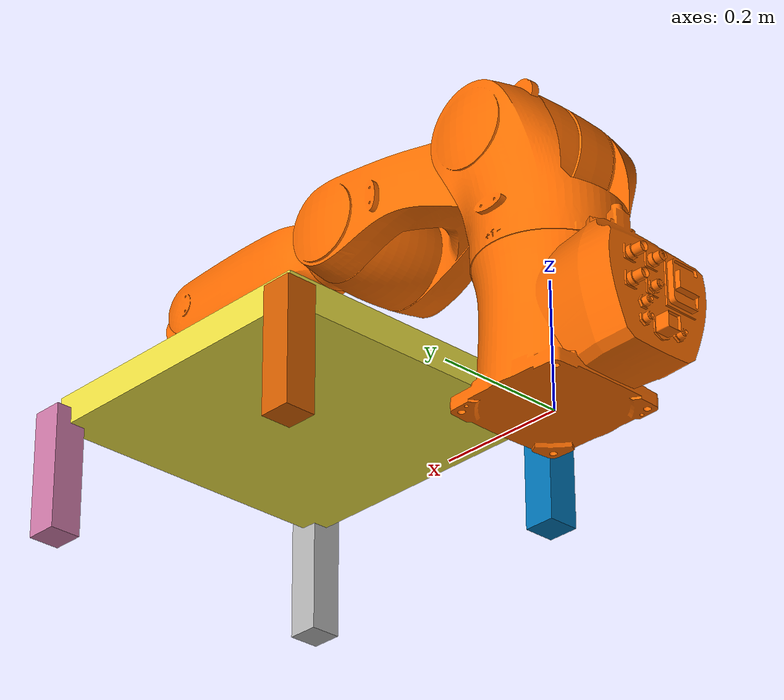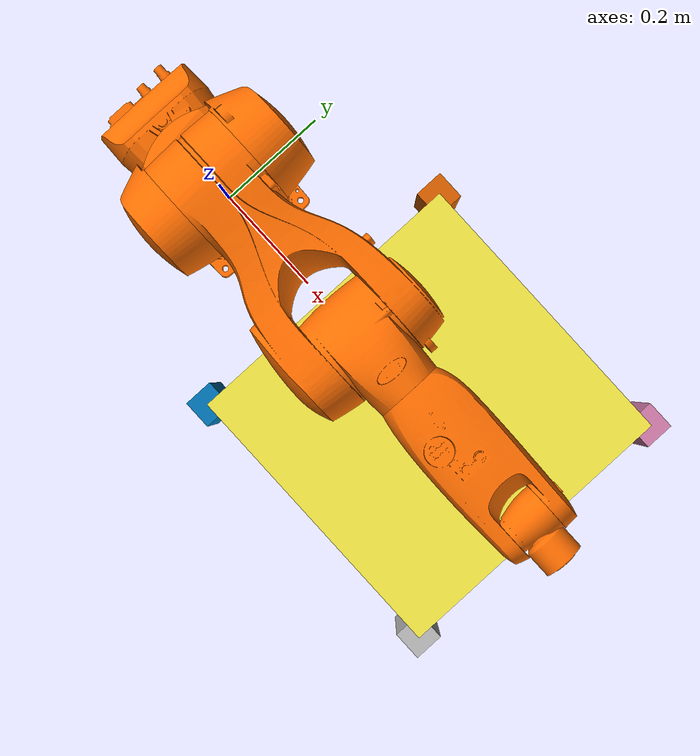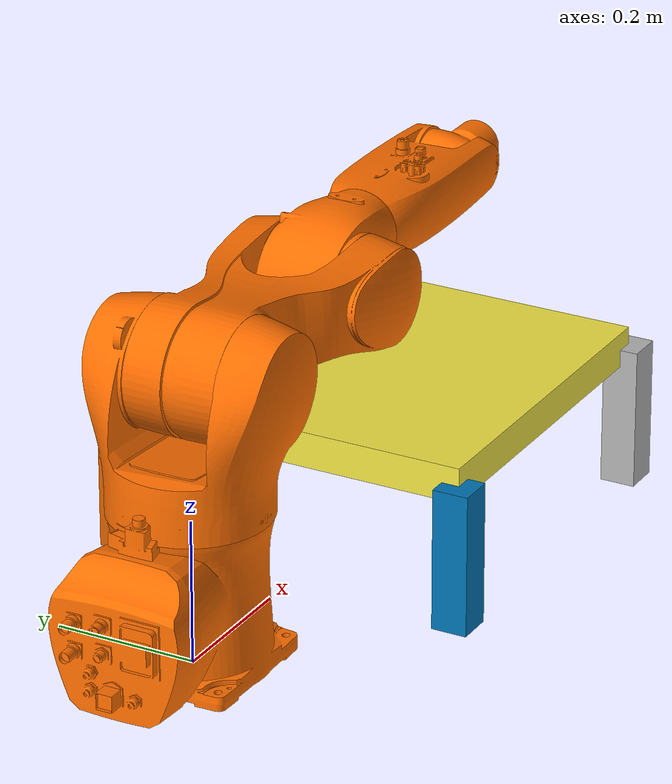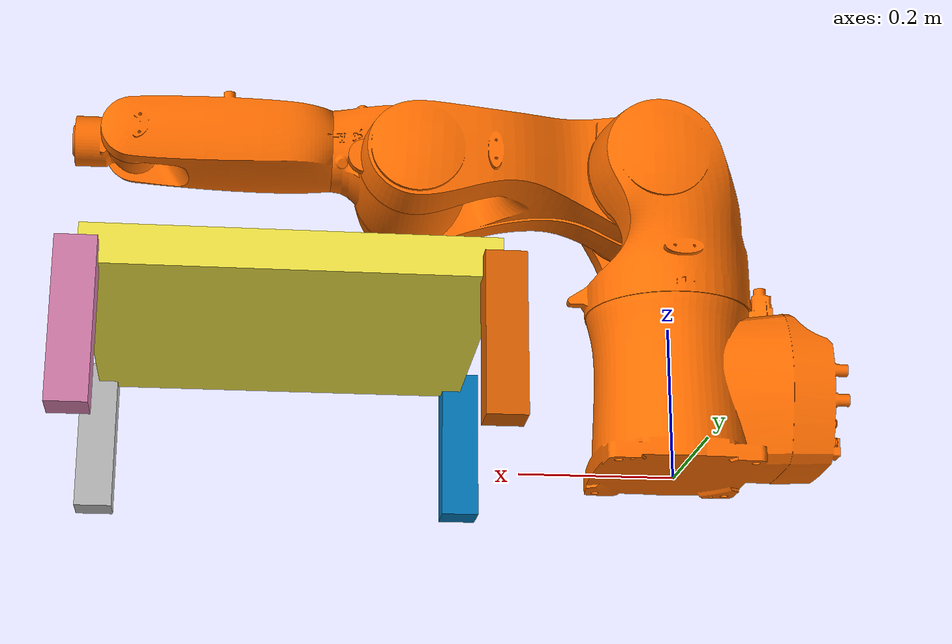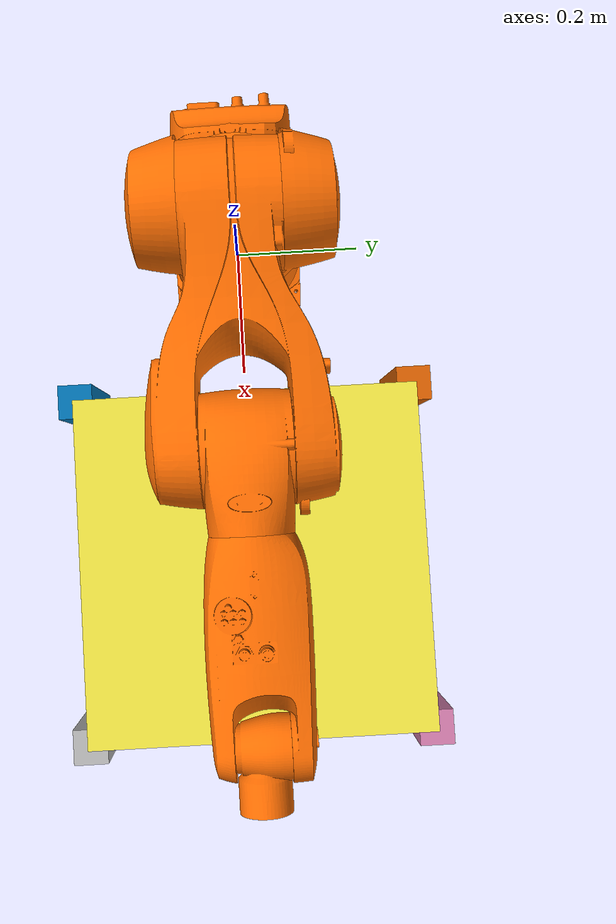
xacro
<?xml version="1.0"?>

<robot name="workcell" xmlns:xacro="http://ros.org/wiki/xacro">

	<xacro:include filename="$(find kuka_kr6)/robots/table.xacro"/>
  <xacro:include filename="$(find kuka_kr6)/robots/kuka_kr6_description_mesh_noword.xacro"/>

  <link name="world_frame"/>

  <xacro:kuka_kr6 prefix=""/>
  <xacro:table length="0.5" width="0.5" height="0.2"/>

	<joint name="world_to_robot" type="fixed">
    <parent link="world_frame"/>
    <child link="base_link"/>
    <origin xyz="0 0 0" rpy="0 0 0"/>
  </joint>

  <joint name="world_to_table" type="fixed">
    <parent link="world_frame"/>
    <child link="table_base"/>
    <origin xyz="0.5 0 0" rpy="0 0 0"/>
  </joint>

</robot>

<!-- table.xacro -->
<robot name="table" xmlns:xacro="http://ros.org/wiki/xacro">

<xacro:macro name="table_leg" params="suffix len x y">
  <link name="table_leg_${suffix}">
    <visual>
      <geometry>
        <box size="0.05 0.05 ${len}"/>
      </geometry>
      <origin xyz="0 0 0" rpy="0 0 0"/>
    </visual>
    <collision>
      <geometry>
        <box size="0.05 0.05 ${len}"/>
      </geometry>
      <origin xyz="0 0 0" rpy="0 0 0"/>
    </collision>
  </link>
  <joint name="table_leg_${suffix}" type="fixed">
    <parent link="table_base"/>
    <child link="table_leg_${suffix}"/>
    <origin xyz="${x} ${y} ${len/2}" rpy="0 0 0"/>
  </joint>
</xacro:macro>

<xacro:macro name="table" params="length width height">
  <link name="table_base"/>
  <link name="table_top">
    <visual>
      <geometry>
        <box size="${length} ${width} 0.05"/>
      </geometry>
      <origin xyz="0 0 0" rpy="0 0 0"/>
    </visual>
    <collision>
      <geometry>
        <box size="${length} ${width} 0.05"/>
      </geometry>
      <origin xyz="0 0 0" rpy="0 0 0"/>
    </collision>
  </link>
  <joint name="table_top" type="fixed">
    <parent link="table_base"/>
    <child link="table_top"/>
    <origin xyz="0 0 ${height}" rpy="0 0 0"/>
  </joint>

  <xacro:table_leg suffix="1" len="${height}" x="${-length/2}" y="${-width/2}"/>
  <xacro:table_leg suffix="2" len="${height}" x="${-length/2}" y="${width/2}"/>
  <xacro:table_leg suffix="3" len="${height}" x="${length/2}" y="${width/2}"/>
  <xacro:table_leg suffix="4" len="${height}" x="${length/2}" y="${-width/2}"/>
</xacro:macro>

</robot>

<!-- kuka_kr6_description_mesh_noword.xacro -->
<robot name="kuka_kr6" xmlns:xacro="http://ros.org/wiki/xacro">
  <xacro:macro name="kuka_kr6" params="prefix">
    <!-- link list -->
    <link name="${prefix}base_link">
     <visual>
      <origin xyz="0 0 0" rpy="0 0 0"/>
      <geometry>
        <mesh filename="package://kuka_kr6/robots/base_link.STL" />
      </geometry>
      <material name="orange">
        <color rgba="1 0.43 0 1" />
      </material>
     </visual>
     <collision>
      <geometry>
        <mesh filename="package://kuka_kr6/robots/base_link.STL" />
       </geometry>
       <material name="yellow">
         <color rgba="0 1 1 1"/>
       </material>
     </collision>
    </link>

    <link name="${prefix}link1">
      <visual>
        <origin xyz="0.025 0 0" rpy="0 0 0" />
        <geometry>
          <mesh filename="package://kuka_kr6/robots/link1.STL" />
        </geometry>
        <material name="orange"/>
      </visual>
      <collision>
        <geometry>
          <mesh filename="package://kuka_kr6/robots/link1.STL" />
        </geometry>
        <material name="yellow"/>
      </collision>
    </link>

    <link name="${prefix}link2">
      <visual>
        <origin xyz="0 0 0" rpy="0 0 0"/>
        <geometry>
          <mesh filename="package://kuka_kr6/robots/link2.STL" />
        </geometry>
        <material name="orange"/>
      </visual>
      <collision>
        <geometry>
          <mesh filename="package://kuka_kr6/robots/link2.STL" />
        </geometry>
        <material name="yellow"/>
      </collision>
    </link>

    <link name="${prefix}link3">
      <visual>
        <origin xyz="0 -0.035 0" rpy="0 0 0" />
        <geometry>
          <mesh filename="package://kuka_kr6/robots/link3.STL" />
        </geometry>
        <material name="orange"/>
      </visual>
      <collision>
        <geometry>
          <mesh filename="package://kuka_kr6/robots/link3.STL" />
        </geometry>
        <material name="yellow"/>
      </collision>
    </link>

    <link name="${prefix}link4">
      <visual>
        <origin xyz="0 0 0" rpy="0 0 0"/>
        <geometry>
          <mesh filename="package://kuka_kr6/robots/link4.STL" />
        </geometry>
        <material name="orange"/>
      </visual>
      <collision>
        <geometry>
          <mesh filename="package://kuka_kr6/robots/link4.STL" />
        </geometry>
        <material name="yellow"/>
      </collision>
    </link>

    <link name="${prefix}link5">
      <visual>
        <origin xyz="0 0 0" rpy="0 -1.57079633 0" />
        <geometry>
          <mesh filename="package://kuka_kr6/robots/link5.STL" />
        </geometry>
        <material name="orange"/>
      </visual>
      <collision>
        <geometry>
          <mesh filename="package://kuka_kr6/robots/link5.STL" />
        </geometry>
        <material name="yellow"/>
      </collision>
    </link>

    <link name="${prefix}link6">
      <visual>
        <origin xyz="0 0 0" rpy="0 0 0"/>
        <geometry>
          <mesh filename="package://kuka_kr6/robots/link6.STL" />
        </geometry>
        <material name="orange"/>
      </visual>
      <collision>
        <geometry>
          <mesh filename="package://kuka_kr6/robots/link6.STL" />
        </geometry>
        <material name="yellow"/>
      </collision>
    </link>

    <link name="${prefix}tip" />
    <!-- end of link list -->

    <!-- joint list -->
    <joint name="${prefix}joint1" type="revolute">
      <origin xyz="0 0 0.4" rpy="3.14159265 0 0" />
      <parent link="${prefix}base_link" />
      <child link="${prefix}link1" />
      <axis xyz="0 0 1" />
      <limit lower="-2.967059728" upper="2.967059728" effort="1" velocity="1"/>
      </joint>

    <joint name="${prefix}joint2" type="revolute">
      <origin xyz="0.025 0 0" rpy="1.57079633 0 0" />
      <parent link="${prefix}link1" />
      <child link="${prefix}link2" />
      <axis xyz="0 0 1" />
      <limit lower="-3.316125579" upper="0.785398163" effort="1" velocity="1"/>
    </joint>

    <joint name="${prefix}joint3" type="revolute">
      <origin xyz="0.315 0 0" rpy="0 0 0" />
      <parent link="${prefix}link2" />
      <child link="${prefix}link3" />
      <axis xyz="0 0 1" />
      <limit lower="-2.094395102" upper="2.722713633" effort="1" velocity="1"/>
    </joint>

    <joint name="${prefix}joint4" type="revolute">
      <origin xyz="0.365 -0.035 0" rpy="0 -1.57079633 0" />
      <parent link="${prefix}link3" />
      <child link="${prefix}link4" />
      <axis xyz="0 0 1" />
      <limit lower="-3.228859116" upper="3.228859116" effort="1" velocity="1"/>
    </joint>

    <joint name="${prefix}joint5" type="revolute">
      <origin xyz="0 0 0" rpy="0 1.57079633 0" />
      <parent link="${prefix}link4" />
      <child link="${prefix}link5" />
      <axis xyz="0 0 1" />
      <limit lower="-2.094395102" upper="2.094395102" effort="1" velocity="1"/>
    </joint>

    <joint name="${prefix}joint6" type="revolute">
      <origin xyz="0 0 0" rpy="0 -1.57079633 0" />
      <parent link="${prefix}link5" />
      <child link="${prefix}link6" />
      <axis xyz="0 0 1" />
      <limit lower="-6.108652382" upper="6.108652382" effort="1" velocity="1"/>
    </joint>

    <joint name="${prefix}tip_joint" type="fixed">
      <origin xyz="0 0 -0.08" rpy="3.14159265 0 1.57079633" />
      <parent link="${prefix}link6" />
      <child link="${prefix}tip" />
    </joint>
    <!-- end of joint list -->

    <!-- ROS base_link to World Coordinates transform -->
    <link name="${prefix}base"/>
    <joint name="${prefix}base_link-base" type="fixed">
      <origin xyz="0 0 0" rpy="0 0 0"/>
      <parent link="${prefix}base_link"/>
      <child link="${prefix}base"/>
    </joint>
  </xacro:macro>

</robot>
